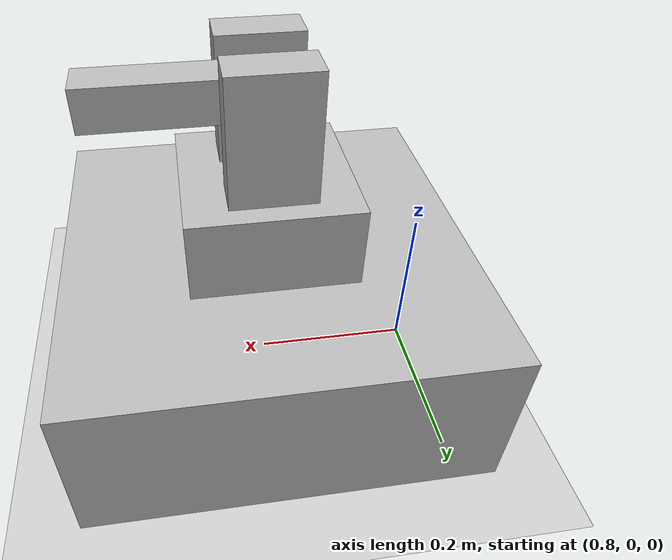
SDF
<?xml version="1.0" ?>
<sdf version="1.5">
  <world name="default">
    <include>
      <uri>model://sun</uri>
    </include>
    <include>
      <uri>model://ground_plane</uri>
    </include>
    <include>
      <uri>model://turret_robot</uri>
      <pose>1 0 0 0 0 0</pose>
    </include>
  </world>
</sdf>

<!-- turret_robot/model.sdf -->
<sdf version="1.4">
<model name="turret_robot">
    <link name="link">
      <pose>0 0 0.1 0 0 0</pose>
      <collision name="collision">
        <geometry>
          <box>
            <size>0.5 0.5 0.2</size>
          </box>
        </geometry>
      </collision>
      <visual name="visual">
        <geometry>
          <box>
            <size>0.5 0.5 0.2</size>
          </box>
        </geometry>
      </visual>
    </link>

    <link name="yaw_link">
      <pose>0 0 0.25 0 0 0</pose>
      <collision name="collision">
        <geometry>
          <box>
            <size>0.2 0.2 0.1</size>
          </box>
        </geometry>
      </collision>
      <visual name="visual">
        <geometry>
          <box>
            <size>0.2 0.2 0.1</size>
          </box>
        </geometry>
      </visual>

      <visual name="visual2">
        <pose>0 0.05 0.1 0 0 0</pose>
        <geometry>
          <box>
            <size>0.1 0.05 0.2</size>
          </box>
        </geometry>
      </visual>

      <visual name="visual3">
        <pose>0 -0.05 0.1 0 0 0</pose>
        <geometry>
          <box>
            <size>0.1 0.05 0.2</size>
          </box>
        </geometry>
      </visual>
    </link>

    <link name="pitch_link">
      <pose>0.0 0 0.4 0 0 0</pose>
      <collision name="collision">
        <pose>0.1 0 0 0 0 0</pose>
        <geometry>
          <box>
            <size>0.2 0.05 0.05</size>
          </box>
        </geometry>
      </collision>
      <visual name="visual">
        <pose>0.1 0 0 0 0 0</pose>
        <geometry>
          <box>
            <size>0.2 0.05 0.05</size>
          </box>
        </geometry>
      </visual>
    </link>

    <joint name='yaw_joint' type='revolute'>
      <parent>link</parent>
      <child>yaw_link</child>
      <pose>0 0 0.5 0 0 0</pose>
      <axis>
        <use_parent_model_frame>true</use_parent_model_frame>
        <xyz>0 0 1</xyz>
      </axis>
    </joint>

    <joint name='pitch_joint' type='revolute'>
      <parent>yaw_link</parent>
      <child>pitch_link</child>
      <axis>
        <use_parent_model_frame>true</use_parent_model_frame>
        <xyz>0 1 0</xyz>
      </axis>
    </joint>

    <plugin name="turret_controller" filename="libTurretPlugin.so">
      <topic_name>cmd_pos</topic_name>
      <yaw_joint_name>yaw_joint</yaw_joint_name>
      <yaw_p>1.0</yaw_p>
      <pitch_joint_name>pitch_joint</pitch_joint_name>
      <pitch_p>1.0</pitch_p>
    </plugin>
  </model>
</sdf>
